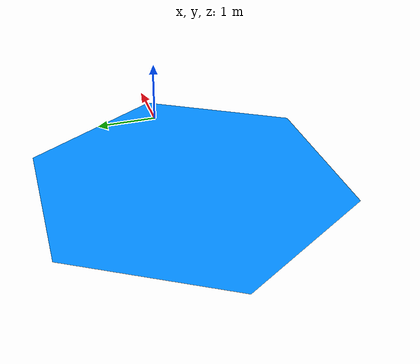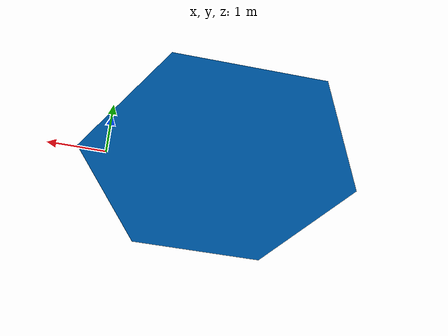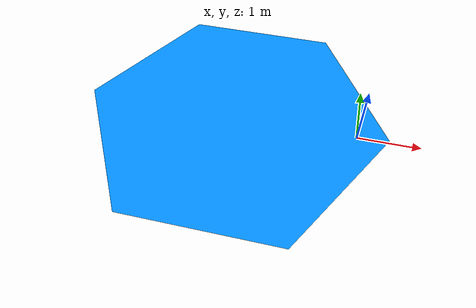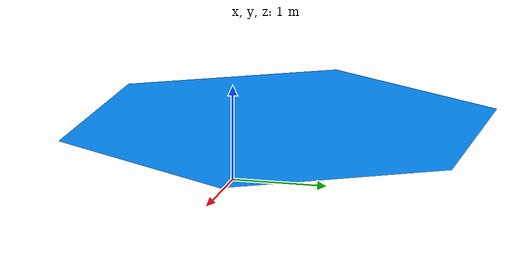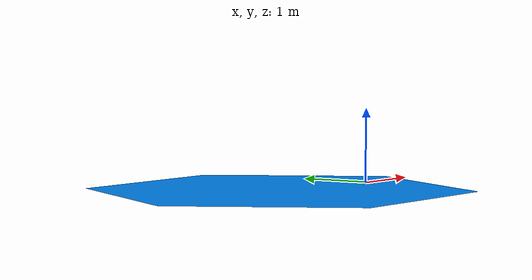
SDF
<?xml version="1.0" ?>
<sdf version="1.9">
  <model name="blue_hexagon">
    <static>true</static>
    <pose>-2 0 0.05 0 0 0</pose>
    <link name="link">
      <visual name="visual">
        <geometry>
          <mesh>
            <uri>../../materials/meshes/hexagon_blue_1m_2cm.stl</uri>
            <scale>5 5 1</scale>
          </mesh>
        </geometry>
        <material>
          <ambient>0.04 0.10 0.28 1</ambient>
          <diffuse>0.00 0.55 1.00 1</diffuse>   <!-- canlı “elektrik mavisi” -->
          <specular>0.90 0.90 0.90 1</specular> <!-- parlak yansıma -->
          <emissive>0.000 0.004 0.541 1</emissive>
          <double_sided>true</double_sided>
        </material>
      </visual>

      <collision name="collision">
        <pose>0 0 -0.047 0 0 0</pose>
        <geometry>
          <box><size>5 4.33 0.1</size></box>
        </geometry>
      </collision>
    </link>
  </model>
</sdf>
